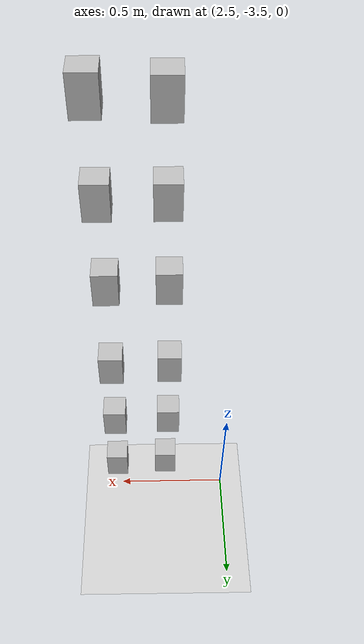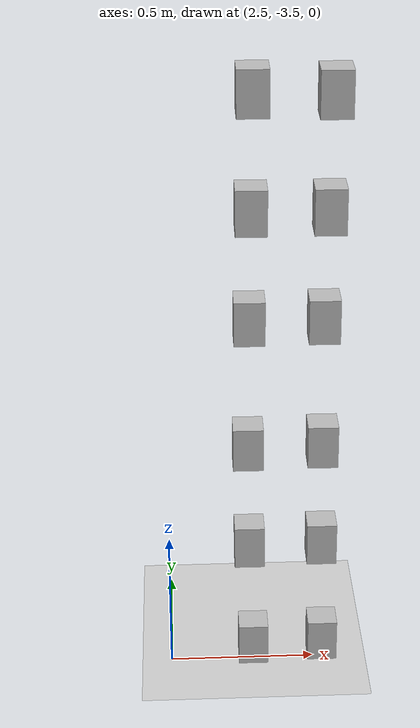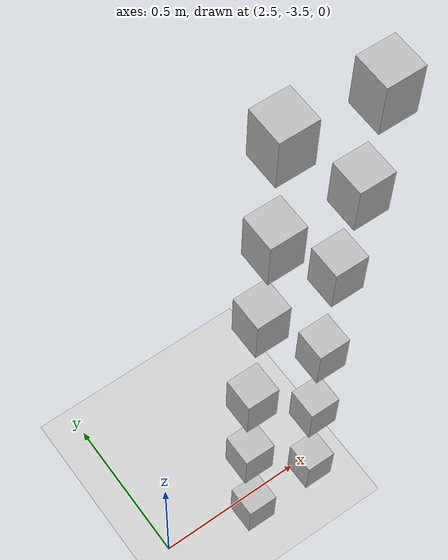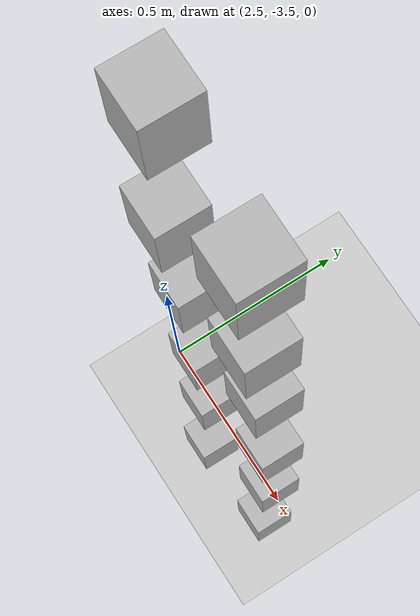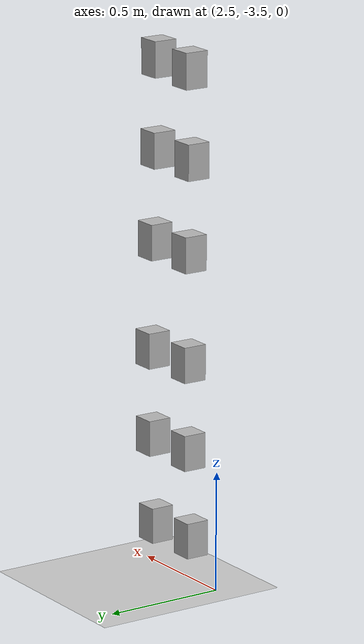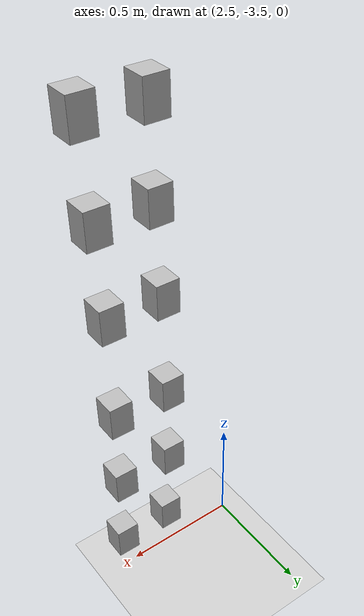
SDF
<sdf version="1.7">
 <world name="default">
  <model name="ground_plane">
   <static>1</static>
   <link name="link">
    <collision name="collision">
     <geometry><plane><normal>0 0 1</normal><size>100 100</size></plane></geometry>
     <surface><friction><ode><mu>100</mu><mu2>50</mu2></ode></friction></surface>
    </collision>
    <visual name="visual">
     <cast_shadows>0</cast_shadows>
     <geometry><plane><normal>0 0 1</normal><size>100 100</size></plane></geometry>
     <material>
      <script><uri>file://media/materials/scripts/gazebo.material</uri><name>Gazebo/Grey</name></script>
     </material>
    </visual>
   </link>
  </model>
  <model name="tea_box_clone">
   <link name="link">
    <pose>0 0 0.075 0 -0 0</pose>
    <visual name="visual">
     <geometry><box><size>0.1 0.1 0.15</size></box></geometry>
     <material>
      <script>
       <uri>model://tea_box/materials/scripts</uri>
       <uri>model://tea_box/materials/textures</uri>
       <name>tea_pat</name>
      </script>
     </material>
    </visual>
    <collision name="collision"><geometry><box><size>0.1 0.1 0.15</size></box></geometry></collision>
   </link>
   <static>1</static>
   <pose>2.78357 -3.56921 0.061312 0 -0 1.56458</pose>
  </model>
  <model name="tea_box_clone_clone_0">
   <link name="link">
    <pose>0 0 0.075 0 -0 0</pose>
    <visual name="visual">
     <geometry><box><size>0.1 0.1 0.15</size></box></geometry>
     <material>
      <script>
       <uri>model://tea_box/materials/scripts</uri>
       <uri>model://tea_box/materials/textures</uri>
       <name>tea_pat</name>
      </script>
     </material>
    </visual>
    <collision name="collision"><geometry><box><size>0.1 0.1 0.15</size></box></geometry></collision>
   </link>
   <static>1</static>
   <pose>3.02264 -3.55748 0.061312 0 -0 1.56458</pose>
  </model>
  <model name="tea_box_clone_clone_clone">
   <link name="link">
    <pose>0 0 0.075 0 -0 0</pose>
    <visual name="visual">
     <geometry><box><size>0.1 0.1 0.15</size></box></geometry>
     <material>
      <script>
       <uri>model://tea_box/materials/scripts</uri>
       <uri>model://tea_box/materials/textures</uri>
       <name>tea_pat</name>
      </script>
     </material>
    </visual>
    <collision name="collision"><geometry><box><size>0.1 0.1 0.15</size></box></geometry></collision>
   </link>
   <static>1</static>
   <pose>2.77129 -3.5466 0.44421 0 -0 1.56458</pose>
  </model>
  <model name="tea_box_clone_clone_clone_clone_clone">
   <link name="link">
    <pose>0 0 0.075 0 -0 0</pose>
    <visual name="visual">
     <geometry><box><size>0.1 0.1 0.15</size></box></geometry>
     <material>
      <script>
       <uri>model://tea_box/materials/scripts</uri>
       <uri>model://tea_box/materials/textures</uri>
       <name>tea_pat</name>
      </script>
     </material>
    </visual>
    <collision name="collision"><geometry><box><size>0.1 0.1 0.15</size></box></geometry></collision>
   </link>
   <static>1</static>
   <pose>2.7673 -3.54307 0.818791 0 -0 1.56458</pose>
  </model>
  <model name="tea_box_clone_clone_clone_clone_clone_0">
   <link name="link">
    <pose>0 0 0.075 0 -0 0</pose>
    <visual name="visual">
     <geometry><box><size>0.1 0.1 0.15</size></box></geometry>
     <material>
      <script>
       <uri>model://tea_box/materials/scripts</uri>
       <uri>model://tea_box/materials/textures</uri>
       <name>tea_pat</name>
      </script>
     </material>
    </visual>
    <collision name="collision"><geometry><box><size>0.1 0.1 0.15</size></box></geometry></collision>
   </link>
   <static>1</static>
   <pose>2.77126 -3.5486 1.27537 0 -0 1.56458</pose>
  </model>
  <model name="tea_box_clone_clone_clone_clone_clone_1">
   <link name="link">
    <pose>0 0 0.075 0 -0 0</pose>
    <visual name="visual">
     <geometry><box><size>0.1 0.1 0.15</size></box></geometry>
     <material>
      <script>
       <uri>model://tea_box/materials/scripts</uri>
       <uri>model://tea_box/materials/textures</uri>
       <name>tea_pat</name>
      </script>
     </material>
    </visual>
    <collision name="collision"><geometry><box><size>0.1 0.1 0.15</size></box></geometry></collision>
   </link>
   <static>1</static>
   <pose>2.77651 -3.56431 1.65259 0 -0 1.56458</pose>
  </model>
  <model name="tea_box_clone_clone_clone_clone_clone_2">
   <link name="link">
    <pose>0 0 0.075 0 -0 0</pose>
    <visual name="visual">
     <geometry><box><size>0.1 0.1 0.15</size></box></geometry>
     <material>
      <script>
       <uri>model://tea_box/materials/scripts</uri>
       <uri>model://tea_box/materials/textures</uri>
       <name>tea_pat</name>
      </script>
     </material>
    </visual>
    <collision name="collision"><geometry><box><size>0.1 0.1 0.15</size></box></geometry></collision>
   </link>
   <static>1</static>
   <pose>2.78166 -3.55685 2.02413 0 -0 1.56458</pose>
  </model>
  <model name="tea_box_clone_clone_clone_clone">
   <link name="link">
    <pose>0 0 0.075 0 -0 0</pose>
    <visual name="visual">
     <geometry><box><size>0.1 0.1 0.15</size></box></geometry>
     <material>
      <script>
       <uri>model://tea_box/materials/scripts</uri>
       <uri>model://tea_box/materials/textures</uri>
       <name>tea_pat</name>
      </script>
     </material>
    </visual>
    <collision name="collision"><geometry><box><size>0.1 0.1 0.15</size></box></geometry></collision>
   </link>
   <static>1</static>
   <pose>3.01591 -3.53853 0.44421 0 -0 1.56458</pose>
  </model>
  <model name="tea_box_clone_clone_clone_clone_clone_clone">
   <link name="link">
    <pose>0 0 0.075 0 -0 0</pose>
    <visual name="visual">
     <geometry><box><size>0.1 0.1 0.15</size></box></geometry>
     <material>
      <script>
       <uri>model://tea_box/materials/scripts</uri>
       <uri>model://tea_box/materials/textures</uri>
       <name>tea_pat</name>
      </script>
     </material>
    </visual>
    <collision name="collision"><geometry><box><size>0.1 0.1 0.15</size></box></geometry></collision>
   </link>
   <static>1</static>
   <pose>3.01389 -3.535 0.818791 0 -0 1.56458</pose>
  </model>
  <model name="tea_box_clone_clone_clone_clone_clone_0_clone">
   <link name="link">
    <pose>0 0 0.075 0 -0 0</pose>
    <visual name="visual">
     <geometry><box><size>0.1 0.1 0.15</size></box></geometry>
     <material>
      <script>
       <uri>model://tea_box/materials/scripts</uri>
       <uri>model://tea_box/materials/textures</uri>
       <name>tea_pat</name>
      </script>
     </material>
    </visual>
    <collision name="collision"><geometry><box><size>0.1 0.1 0.15</size></box></geometry></collision>
   </link>
   <static>1</static>
   <pose>3.01059 -3.54439 1.27537 0 -0 1.56458</pose>
  </model>
  <model name="tea_box_clone_clone_clone_clone_clone_1_clone">
   <link name="link">
    <pose>0 0 0.075 0 -0 0</pose>
    <visual name="visual">
     <geometry><box><size>0.1 0.1 0.15</size></box></geometry>
     <material>
      <script>
       <uri>model://tea_box/materials/scripts</uri>
       <uri>model://tea_box/materials/textures</uri>
       <name>tea_pat</name>
      </script>
     </material>
    </visual>
    <collision name="collision"><geometry><box><size>0.1 0.1 0.15</size></box></geometry></collision>
   </link>
   <static>1</static>
   <pose>3.02011 -3.56417 1.65259 0 -0 1.56458</pose>
  </model>
  <model name="tea_box_clone_clone_clone_clone_clone_2_clone">
   <link name="link">
    <pose>0 0 0.075 0 -0 0</pose>
    <visual name="visual">
     <geometry><box><size>0.1 0.1 0.15</size></box></geometry>
     <material>
      <script>
       <uri>model://tea_box/materials/scripts</uri>
       <uri>model://tea_box/materials/textures</uri>
       <name>tea_pat</name>
      </script>
     </material>
    </visual>
    <collision name="collision"><geometry><box><size>0.1 0.1 0.15</size></box></geometry></collision>
   </link>
   <static>1</static>
   <pose>3.02973 -3.57472 2.02413 0 -0 1.56458</pose>
  </model>
 </world>
</sdf>
